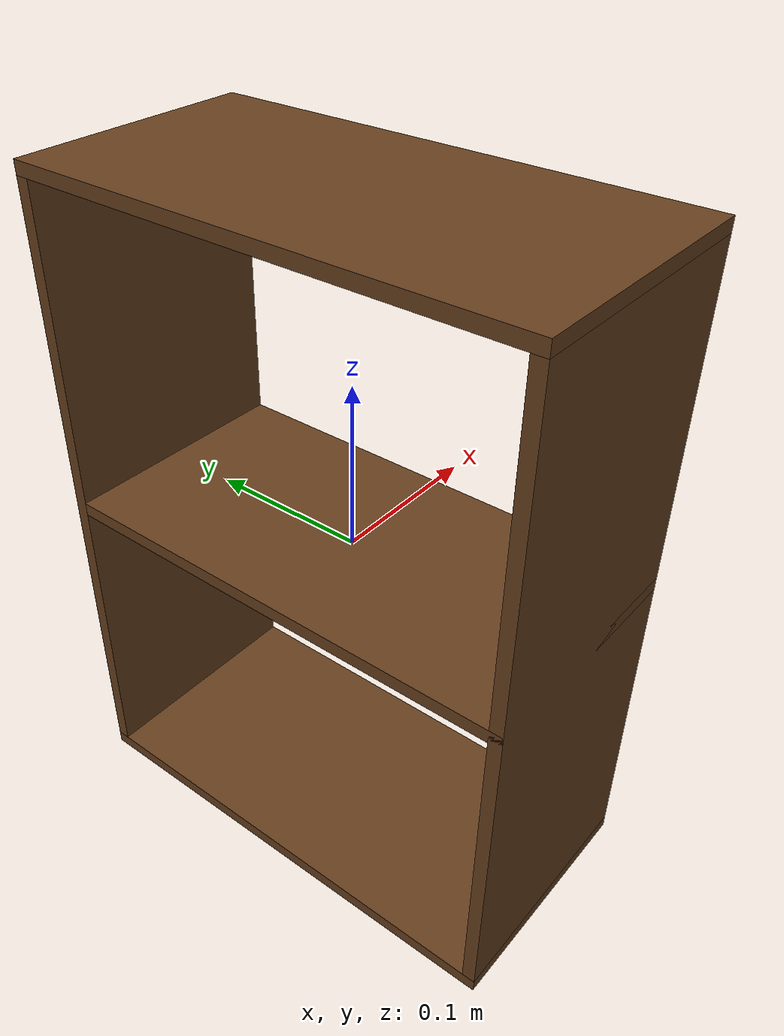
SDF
<?xml version="1.0"?>
<sdf version="1.7">
  <model name="shelves">
    <link name="shelves_body">
      <!-- Wall visuals -->
      <visual name="right_wall">
        <pose>0 0.146 0 0 0 0</pose>
        <geometry>
          <box>
            <size>0.15 0.008 0.3915</size>
          </box>
        </geometry>
        <material>
          <ambient>0.4 0.25 0.12 1</ambient>
          <diffuse>0.4 0.25 0.12 1</diffuse>
          <specular>0.1 0.1 0.1 1</specular>
        </material>
      </visual>
      <visual name="left_wall">
        <pose>0 -0.146 0 0 0 0</pose>
        <geometry>
          <box>
            <size>0.15 0.008 0.3915</size>
          </box>
        </geometry>
        <material>
          <ambient>0.4 0.25 0.12 1</ambient>
          <diffuse>0.4 0.25 0.12 1</diffuse>
          <specular>0.1 0.1 0.1 1</specular>
        </material>
      </visual>

      <!-- Wall collisions -->
      <collision name="right_wall">
        <pose>0 0.146 0 0 0 0</pose>
        <geometry>
          <box>
            <size>0.15 0.008 0.3915</size>
          </box>
        </geometry>
      </collision>
      <collision name="left_wall">
        <pose>0 -0.146 0 0 0 0</pose>
        <geometry>
          <box>
            <size>0.15 0.008 0.3915</size>
          </box>
        </geometry>
      </collision>
    </link>

    <link name="top_and_bottom">
      <!-- Shelf visuals -->
      <visual name="bottom">
        <pose>0 0 -0.19975 0 0 0</pose>
        <geometry>
          <box>
            <size>0.15 0.3 0.008</size>
          </box>
        </geometry>
        <material>
          <ambient>0.4 0.25 0.12 1</ambient>
          <diffuse>0.4 0.25 0.12 1</diffuse>
          <specular>0.1 0.1 0.1 1</specular>
        </material>
      </visual>
      <visual name="top">
        <pose>0 0 0.19975 0 0 0</pose>
        <geometry>
          <box>
            <size>0.15 0.3 0.008</size>
          </box>
        </geometry>
        <material>
          <ambient>0.4 0.25 0.12 1</ambient>
          <diffuse>0.4 0.25 0.12 1</diffuse>
          <specular>0.1 0.1 0.1 1</specular>
        </material>
      </visual>
      <visual name="middle_shelf">
        <pose>0 0 0 0 0 0</pose>
        <geometry>
          <box>
            <size>0.15 0.3 0.008</size>
          </box>
        </geometry>
        <material>
          <ambient>0.4 0.25 0.12 1</ambient>
          <diffuse>0.4 0.25 0.12 1</diffuse>
          <specular>0.1 0.1 0.1 1</specular>
        </material>
      </visual>

      <!-- Shelf collisions -->
      <collision name="bottom">
        <pose>0 0 -0.19975 0 0 0</pose>
        <geometry>
          <box>
            <size>0.15 0.3 0.008</size>
          </box>
        </geometry>
      </collision>
      <collision name="top">
        <pose>0 0 0.19975 0 0 0</pose>
        <geometry>
          <box>
            <size>0.15 0.3 0.008</size>
          </box>
        </geometry>
      </collision>
      <collision name="middle_shelf">
        <pose>0 0 0 0 0 0</pose>
        <geometry>
          <box>
            <size>0.15 0.3 0.008</size>
          </box>
        </geometry>
      </collision>
    </link>

    <!-- Joint between components -->
    <joint name="top_and_bottom_shelves_body" type="fixed">
      <child>top_and_bottom</child>
      <parent>shelves_body</parent>
    </joint>
  </model>
</sdf>
